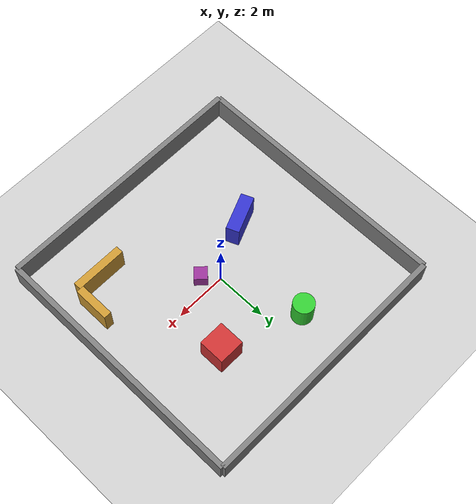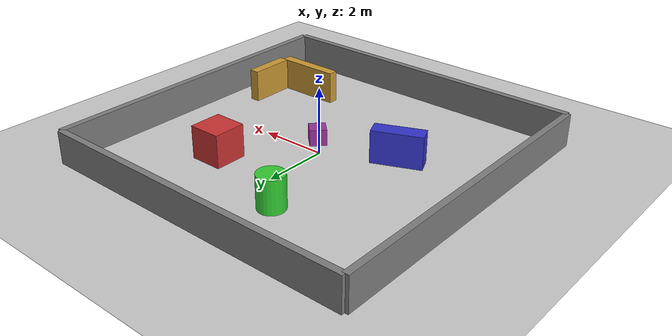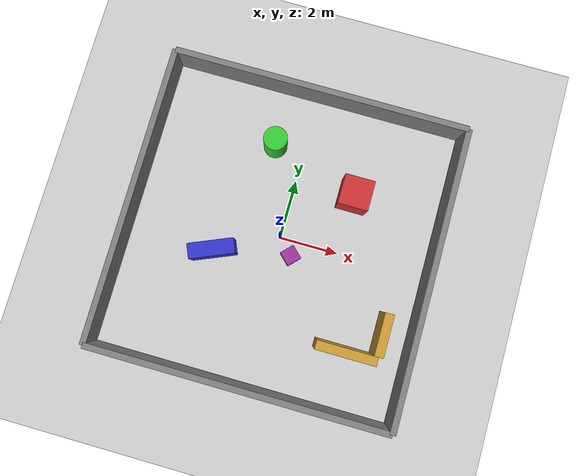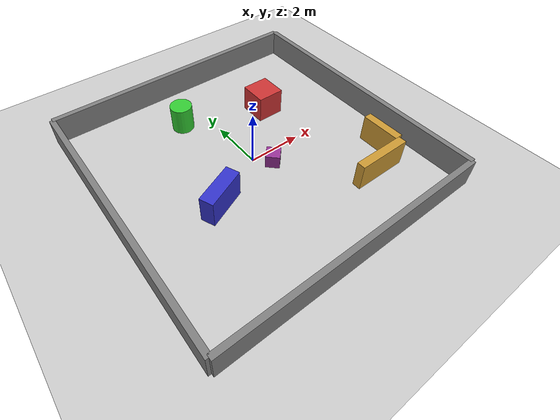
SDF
<?xml version="1.0" ?>
<sdf version="1.8">
  <world name="slam_test_world">

    <!-- Physics -->
    <physics name="1ms" type="ignored">
      <max_step_size>0.001</max_step_size>
      <real_time_factor>1.0</real_time_factor>
    </physics>

    <!-- Plugins -->
    <plugin filename="gz-sim-physics-system" name="gz::sim::systems::Physics"/>
    <plugin filename="gz-sim-scene-broadcaster-system" name="gz::sim::systems::SceneBroadcaster"/>
    <plugin filename="gz-sim-user-commands-system" name="gz::sim::systems::UserCommands"/>
    <plugin filename="gz-sim-sensors-system" name="gz::sim::systems::Sensors">
      <render_engine>ogre2</render_engine>
    </plugin>

    <!-- Lighting -->
    <light type="directional" name="sun">
      <cast_shadows>true</cast_shadows>
      <pose>0 0 10 0 0 0</pose>
      <diffuse>0.8 0.8 0.8 1</diffuse>
      <specular>0.2 0.2 0.2 1</specular>
      <direction>-0.5 0.1 -0.9</direction>
    </light>

    <!-- Ground Plane -->
    <model name="ground_plane">
      <static>true</static>
      <link name="link">
        <collision name="collision">
          <geometry>
            <plane><normal>0 0 1</normal><size>100 100</size></plane>
          </geometry>
        </collision>
        <visual name="visual">
          <geometry>
            <plane><normal>0 0 1</normal><size>100 100</size></plane>
          </geometry>
          <material>
            <ambient>0.8 0.8 0.8 1</ambient>
            <diffuse>0.8 0.8 0.8 1</diffuse>
          </material>
        </visual>
      </link>
    </model>

    <!-- ===== WALLS (10m x 10m room) ===== -->

    <!-- North Wall -->
    <model name="wall_north">
      <static>true</static>
      <pose>0 5 0.5 0 0 0</pose>
      <link name="link">
        <collision name="collision">
          <geometry><box><size>10 0.2 1.0</size></box></geometry>
        </collision>
        <visual name="visual">
          <geometry><box><size>10 0.2 1.0</size></box></geometry>
          <material><ambient>0.5 0.5 0.5 1</ambient></material>
        </visual>
      </link>
    </model>

    <!-- South Wall -->
    <model name="wall_south">
      <static>true</static>
      <pose>0 -5 0.5 0 0 0</pose>
      <link name="link">
        <collision name="collision">
          <geometry><box><size>10 0.2 1.0</size></box></geometry>
        </collision>
        <visual name="visual">
          <geometry><box><size>10 0.2 1.0</size></box></geometry>
          <material><ambient>0.5 0.5 0.5 1</ambient></material>
        </visual>
      </link>
    </model>

    <!-- East Wall -->
    <model name="wall_east">
      <static>true</static>
      <pose>5 0 0.5 0 0 0</pose>
      <link name="link">
        <collision name="collision">
          <geometry><box><size>0.2 10 1.0</size></box></geometry>
        </collision>
        <visual name="visual">
          <geometry><box><size>0.2 10 1.0</size></box></geometry>
          <material><ambient>0.5 0.5 0.5 1</ambient></material>
        </visual>
      </link>
    </model>

    <!-- West Wall -->
    <model name="wall_west">
      <static>true</static>
      <pose>-5 0 0.5 0 0 0</pose>
      <link name="link">
        <collision name="collision">
          <geometry><box><size>0.2 10 1.0</size></box></geometry>
        </collision>
        <visual name="visual">
          <geometry><box><size>0.2 10 1.0</size></box></geometry>
          <material><ambient>0.5 0.5 0.5 1</ambient></material>
        </visual>
      </link>
    </model>

    <!-- ===== OBSTACLES ===== -->

    <!-- Box 1 -->
    <model name="box1">
      <static>true</static>
      <pose>2 2 0.5 0 0 0</pose>
      <link name="link">
        <collision name="collision">
          <geometry><box><size>1.0 1.0 1.0</size></box></geometry>
        </collision>
        <visual name="visual">
          <geometry><box><size>1.0 1.0 1.0</size></box></geometry>
          <material><ambient>0.8 0.2 0.2 1</ambient></material>
        </visual>
      </link>
    </model>

    <!-- Box 2 -->
    <model name="box2">
      <static>true</static>
      <pose>-2 -1 0.5 0 0 0.4</pose>
      <link name="link">
        <collision name="collision">
          <geometry><box><size>1.5 0.5 1.0</size></box></geometry>
        </collision>
        <visual name="visual">
          <geometry><box><size>1.5 0.5 1.0</size></box></geometry>
          <material><ambient>0.2 0.2 0.8 1</ambient></material>
        </visual>
      </link>
    </model>

    <!-- Cylinder -->
    <model name="cylinder1">
      <static>true</static>
      <pose>-1 3 0.5 0 0 0</pose>
      <link name="link">
        <collision name="collision">
          <geometry><cylinder><radius>0.4</radius><length>1.0</length></cylinder></geometry>
        </collision>
        <visual name="visual">
          <geometry><cylinder><radius>0.4</radius><length>1.0</length></cylinder></geometry>
          <material><ambient>0.2 0.8 0.2 1</ambient></material>
        </visual>
      </link>
    </model>

    <!-- L-shaped obstacle (two boxes) -->
    <model name="l_shape_1">
      <static>true</static>
      <pose>3 -3 0.5 0 0 0</pose>
      <link name="link">
        <collision name="collision">
          <geometry><box><size>2.0 0.3 1.0</size></box></geometry>
        </collision>
        <visual name="visual">
          <geometry><box><size>2.0 0.3 1.0</size></box></geometry>
          <material><ambient>0.8 0.6 0.2 1</ambient></material>
        </visual>
      </link>
    </model>

    <model name="l_shape_2">
      <static>true</static>
      <pose>4 -2.15 0.5 0 0 0</pose>
      <link name="link">
        <collision name="collision">
          <geometry><box><size>0.3 1.4 1.0</size></box></geometry>
        </collision>
        <visual name="visual">
          <geometry><box><size>0.3 1.4 1.0</size></box></geometry>
          <material><ambient>0.8 0.6 0.2 1</ambient></material>
        </visual>
      </link>
    </model>

    <!-- Small box near center -->
    <model name="box_center">
      <static>true</static>
      <pose>0.5 -0.5 0.25 0 0 0.8</pose>
      <link name="link">
        <collision name="collision">
          <geometry><box><size>0.5 0.5 0.5</size></box></geometry>
        </collision>
        <visual name="visual">
          <geometry><box><size>0.5 0.5 0.5</size></box></geometry>
          <material><ambient>0.6 0.2 0.6 1</ambient></material>
        </visual>
      </link>
    </model>

  </world>
</sdf>
